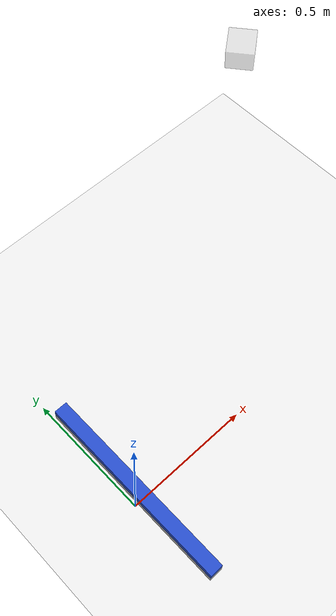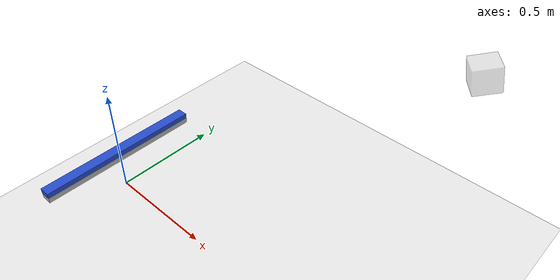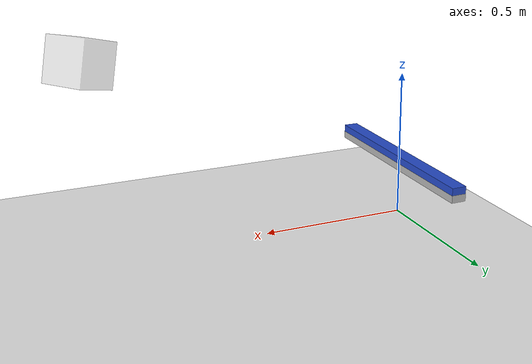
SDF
<sdf version="1.6">
 <world name="default">
  <model name="ground_plane">
   <static>1</static>
   <link name="link">
    <collision name="collision">
     <geometry><plane><normal>0 0 1</normal><size>100 100</size></plane></geometry>
     <surface><friction><ode><mu>100</mu><mu2>50</mu2></ode></friction></surface>
    </collision>
    <visual name="visual">
     <cast_shadows>0</cast_shadows>
     <geometry><plane><normal>0 0 1</normal><size>100 100</size></plane></geometry>
     <material>
      <script><uri>file://media/materials/scripts/gazebo.material</uri><name>Gazebo/White</name></script>
     </material>
    </visual>
   </link>
  </model>
  <model name="chair">
   <pose>0 0 1e-06 0 -0 0</pose>
   <link name="chair::low_part">
    <pose>0 0 0.18 0 -0 0</pose>
    <inertial>
     <mass>1</mass>
     <inertia><ixx>1</ixx><ixy>0</ixy><ixz>0</ixz><iyy>1</iyy><iyz>0</iyz><izz>1</izz></inertia>
    </inertial>
    <collision name="collision_low"><geometry><box><size>0.05 0.75 0.025</size></box></geometry></collision>
    <visual name="visual_low"><geometry><box><size>0.05 0.75 0.025</size></box></geometry></visual>
   </link>
   <link name="chair::high_part">
    <pose>0 0 0.205 0 -0 0</pose>
    <inertial>
     <mass>1</mass>
     <inertia><ixx>1</ixx><ixy>0</ixy><ixz>0</ixz><iyy>1</iyy><iyz>0</iyz><izz>1</izz></inertia>
    </inertial>
    <collision name="collision_high">
     <geometry><box><size>0.05 0.75 0.025</size></box></geometry>
     <max_contacts>4</max_contacts>
     <surface>
      <contact>
       <ode>
        <soft_erp>0.2</soft_erp>
        <soft_cfm>0</soft_cfm>
        <kp>1.8e+06</kp>
        <kd>100</kd>
        <max_vel>100</max_vel>
        <min_depth>0.0001</min_depth>
       </ode>
      </contact>
      <friction><ode><mu>1</mu><mu2>1</mu2><fdir1>0 0 0</fdir1><slip1>0</slip1><slip2>0</slip2></ode></friction>
      <bounce><restitution_coefficient>0</restitution_coefficient><threshold>100000</threshold></bounce>
     </surface>
    </collision>
    <visual name="visual_high">
     <material><script><name>Gazebo/Blue</name><uri>__default__</uri></script></material>
     <geometry><box><size>0.05 0.75 0.025</size></box></geometry>
    </visual>
   </link>
   <joint name="chair::sensor_joint" type="fixed">
    <parent>chair::low_part</parent>
    <child>chair::high_part</child>
    <axis>
     <limit><lower>0</lower><upper>0</upper></limit>
     <xyz>0 0 0</xyz>
     <use_parent_model_frame>0</use_parent_model_frame>
    </axis>
    <sensor name="chair_ft_sensor" type="force_torque">
     <force_torque><frame>child</frame><measure_direction>parent_to_child</measure_direction></force_torque>
     <always_on>1</always_on>
     <visualize>1</visualize>
     <update_rate>100</update_rate>
     <plugin name="chair_FT_plugin" filename="libgazebo_yarp_forcetorque.so">
      <yarpConfigurationFile>model://icub_chair_world/chair/chair_gazebo_torque.ini</yarpConfigurationFile>
     </plugin>
    </sensor>
   </joint>
   <joint name="chair::fixed to ground" type="fixed">
    <parent>world</parent>
    <child>chair::low_part</child>
    <axis>
     <limit><lower>0</lower><upper>0</upper></limit>
     <xyz>0 0 0.18</xyz>
     <use_parent_model_frame>0</use_parent_model_frame>
    </axis>
   </joint>
  </model>
  <model name="yarp_camera">
   <pose>1.2 0.75 0.81 0.017888 0.238215 -2.47437</pose>
   <static>0</static>
   <link name="link">
    <gravity>0</gravity>
    <visual name="visual">
     <geometry><box><size>0.1 0.1 0.1</size></box></geometry>
     <transparency>0.6</transparency>
    </visual>
    <sensor name="yarp_camera_sensor" type="camera">
     <camera name="__default__">
      <horizontal_fov>0.5</horizontal_fov>
      <image><width>1080</width><height>1920</height></image>
      <clip><near>0.1</near><far>100</far></clip>
     </camera>
     <always_on>1</always_on>
     <update_rate>30</update_rate>
     <visualize>1</visualize>
     <plugin name="yarp_camera_control" filename="libyarp_camera_control.so"/>
    </sensor>
    <inertial>
     <inertia><ixx>1</ixx><ixy>0</ixy><ixz>0</ixz><iyy>1</iyy><iyz>0</iyz><izz>1</izz></inertia>
     <mass>1</mass>
    </inertial>
   </link>
   <plugin name="yarp_model_move" filename="libyarp_model_move.so"/>
  </model>
 </world>
</sdf>
